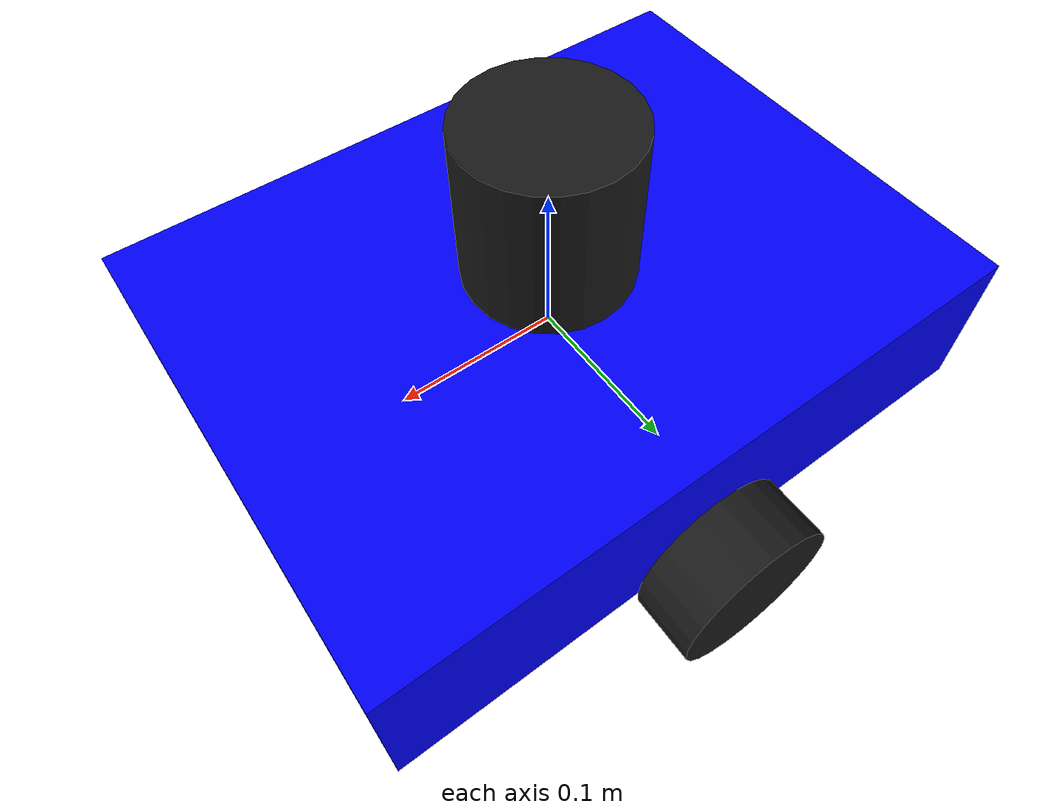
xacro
<?xml version="1.0"?>
<robot xmlns:xacro="http://ros.org/wiki/xacro" name="quad">

  <!-- PROPERTIES -->
  <xacro:property name="chassis_length" value="0.4" />
  <xacro:property name="chassis_width" value="0.3" />
  <xacro:property name="chassis_height" value="0.1" />
  <xacro:property name="chassis_mass" value="5.0" />
  <xacro:property name="wheel_radius" value="0.05" />
  <xacro:property name="wheel_thickness" value="0.04" />
  <xacro:property name="wheel_mass" value="0.5" />
  <xacro:property name="wheel_y_offset" value="${chassis_width / 2 + wheel_thickness / 2}" />
  <xacro:property name="caster_radius" value="0.025" />
  <xacro:property name="caster_mass" value="0.1" />
  <xacro:property name="M_PI" value="3.1415926535897931" />

  <!-- INERTIA MACROS -->
  <xacro:macro name="box_inertia" params="m w h d">
    <inertial>
      <mass value="${m}"/>
      <inertia ixx="${(m/12)*(h*h+d*d)}" ixy="0" ixz="0"
               iyy="${(m/12)*(w*w+d*d)}" iyz="0"
               izz="${(m/12)*(w*w+h*h)}"/>
    </inertial>
  </xacro:macro>

  <xacro:macro name="cylinder_inertia" params="m r h">
    <inertial>
      <mass value="${m}"/>
      <inertia ixx="${(m/12)*(3*r*r+h*h)}" ixy="0" ixz="0"
               iyy="${(m/12)*(3*r*r+h*h)}" iyz="0"
               izz="${m*r*r/2}"/>
    </inertial>
  </xacro:macro>

  <xacro:macro name="sphere_inertia" params="m r">
    <inertial>
      <mass value="${m}"/>
      <inertia ixx="${2*m*r*r/5}" ixy="0" ixz="0"
               iyy="${2*m*r*r/5}" iyz="0"
               izz="${2*m*r*r/5}"/>
    </inertial>
  </xacro:macro>

  <!-- BASE LINK -->
  <link name="base_link">
    <visual>
      <geometry><box size="${chassis_length} ${chassis_width} ${chassis_height}"/></geometry>
      <material name="blue"><color rgba="0.0 0.0 1.0 1.0"/></material>
    </visual>
    <collision>
      <geometry><box size="${chassis_length} ${chassis_width} ${chassis_height}"/></geometry>
    </collision>
    <xacro:box_inertia m="${chassis_mass}" w="${chassis_length}" h="${chassis_width}" d="${chassis_height}"/>
  </link>

  <!-- CASTER WHEEL -->
  <link name="caster_wheel_link">
    <visual>
      <geometry><sphere radius="${caster_radius}"/></geometry>
      <material name="grey"><color rgba="0.5 0.5 0.5 1.0"/></material>
    </visual>
    <collision>
      <geometry><sphere radius="${caster_radius}"/></geometry>
    </collision>
    <xacro:sphere_inertia m="${caster_mass}" r="${caster_radius}"/>
  </link>
  <joint name="caster_wheel_joint" type="fixed">
    <parent link="base_link"/>
    <child link="caster_wheel_link"/>
    <origin xyz="${chassis_length/2 - caster_radius} 0 ${-(chassis_height/2) - wheel_radius + caster_radius*2}" rpy="0 0 0"/>
  </joint>

  <!-- LEFT WHEEL -->
  <link name="left_wheel_link">
    <visual>
      <origin xyz="0 0 0" rpy="${M_PI/2} 0 0"/>
      <geometry>
        <cylinder radius="${wheel_radius}" length="${wheel_thickness}"/>
      </geometry>
      <material name="black">
        <color rgba="0.1 0.1 0.1 1.0"/>
      </material>
    </visual>
    <collision>
      <origin xyz="0 0 0" rpy="${M_PI/2} 0 0"/>
      <geometry>
        <cylinder radius="${wheel_radius}" length="${wheel_thickness}"/>
      </geometry>
    </collision>
    <xacro:cylinder_inertia m="${wheel_mass}" r="${wheel_radius}" h="${wheel_thickness}"/>
  </link>
  <joint name="left_wheel_joint" type="continuous">
    <parent link="base_link"/>
    <child link="left_wheel_link"/>
    <origin xyz="0 ${wheel_y_offset} ${-(chassis_height/2)}" rpy="0 0 0"/>
    <axis xyz="0 1 0"/>
  </joint>

  <!-- RIGHT WHEEL -->
  <link name="right_wheel_link">
    <visual>
      <origin xyz="0 0 0" rpy="${M_PI/2} 0 0"/>
      <geometry>
        <cylinder radius="${wheel_radius}" length="${wheel_thickness}"/>
      </geometry>
      <material name="black">
        <color rgba="0.1 0.1 0.1 1.0"/>
      </material>
    </visual>
    <collision>
      <origin xyz="0 0 0" rpy="${M_PI/2} 0 0"/>
      <geometry>
        <cylinder radius="${wheel_radius}" length="${wheel_thickness}"/>
      </geometry>
    </collision>
    <xacro:cylinder_inertia m="${wheel_mass}" r="${wheel_radius}" h="${wheel_thickness}"/>
  </link>
  <joint name="right_wheel_joint" type="continuous">
    <parent link="base_link"/>
    <child link="right_wheel_link"/>
    <origin xyz="0 ${-wheel_y_offset} ${-(chassis_height/2)}" rpy="0 0 0"/>
    <axis xyz="0 1 0"/>
  </joint>

  <!-- LIDAR -->
  <link name="lidar_link">
    <visual>
      <geometry><cylinder radius="0.05" length="0.1"/></geometry>
      <material name="black"/>
    </visual>
    <collision>
      <geometry><cylinder radius="0.05" length="0.1"/></geometry>
    </collision>
    <xacro:cylinder_inertia m="0.1" r="0.05" h="0.1"/>
  </link>
  <joint name="lidar_joint" type="fixed">
    <parent link="base_link"/>
    <child link="lidar_link"/>
    <origin xyz="0 0 ${chassis_height/2 + 0.05}" rpy="0 0 0"/>
  </joint>

  <gazebo reference="lidar_link">
    <sensor name="lidar" type="gpu_lidar">
      <always_on>true</always_on>
      <update_rate>10</update_rate>
      <topic>/scan</topic>
      <frame_id>lidar_link</frame_id>
      <lidar>
        <scan>
          <horizontal>
            <samples>720</samples>
            <resolution>1</resolution>
            <min_angle>-3.14159</min_angle>
            <max_angle>3.14159</max_angle>
          </horizontal>
          <vertical>
            <samples>16</samples>
            <resolution>1</resolution>
            <min_angle>-0.2618</min_angle>
            <max_angle>0.2618</max_angle>
          </vertical>
        </scan>
        <range>
          <min>0.12</min>
          <max>30.0</max>
          <resolution>0.01</resolution>
        </range>
        <noise>
          <type>gaussian</type>
          <mean>0.0</mean>
          <stddev>0.01</stddev>
        </noise>
      </lidar>
      <output_type>points</output_type>
    </sensor>
  </gazebo>

  <gazebo>
    <plugin name="gz::sim::systems::DiffDrive" filename="gz-sim-diff-drive-system">
      <left_joint>left_wheel_joint</left_joint>
      <right_joint>right_wheel_joint</right_joint>
      <wheel_separation>${wheel_y_offset * 2}</wheel_separation>
      <wheel_radius>${wheel_radius}</wheel_radius>
      <odom_publish_frequency>50</odom_publish_frequency>
      <topic>cmd_vel</topic>
      <frame_id>odom</frame_id>
      <child_frame_id>base_link</child_frame_id>
    </plugin>
  </gazebo>

  <gazebo>
    <plugin name="gz::sim::systems::JointStatePublisher" filename="gz-sim-joint-state-publisher-system">
      <joint_name>left_wheel_joint</joint_name>
      <joint_name>right_wheel_joint</joint_name>
    </plugin>
  </gazebo>

</robot>
